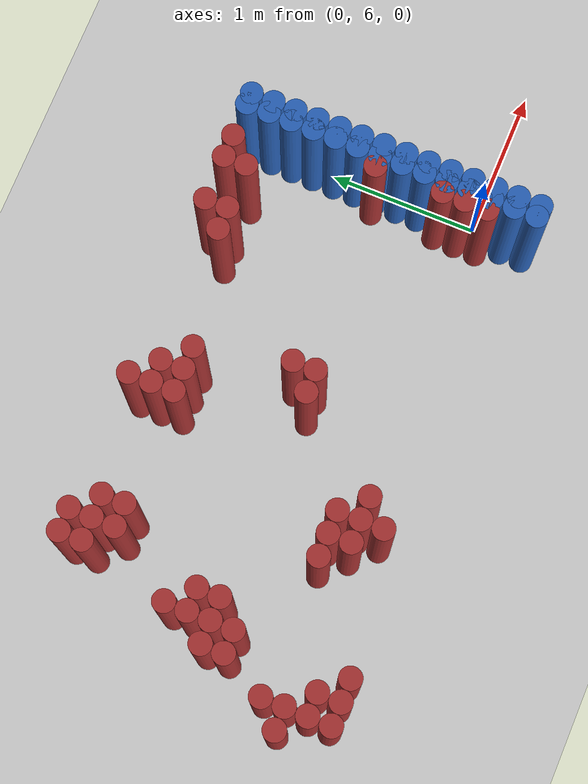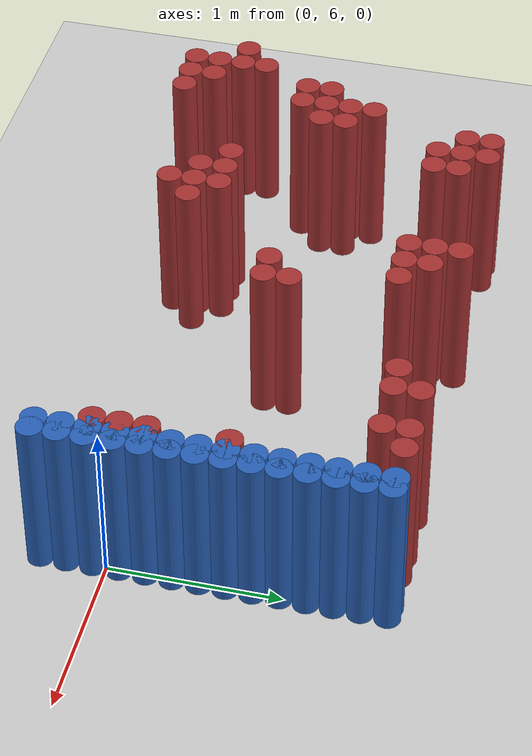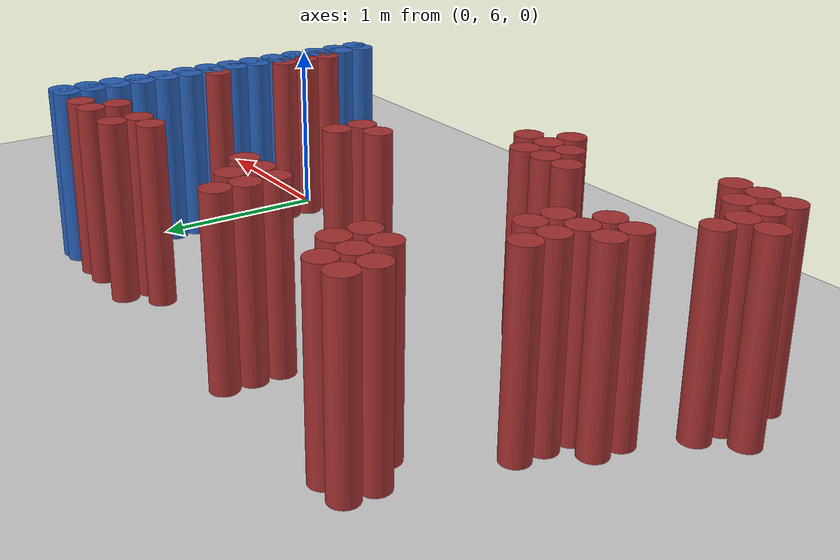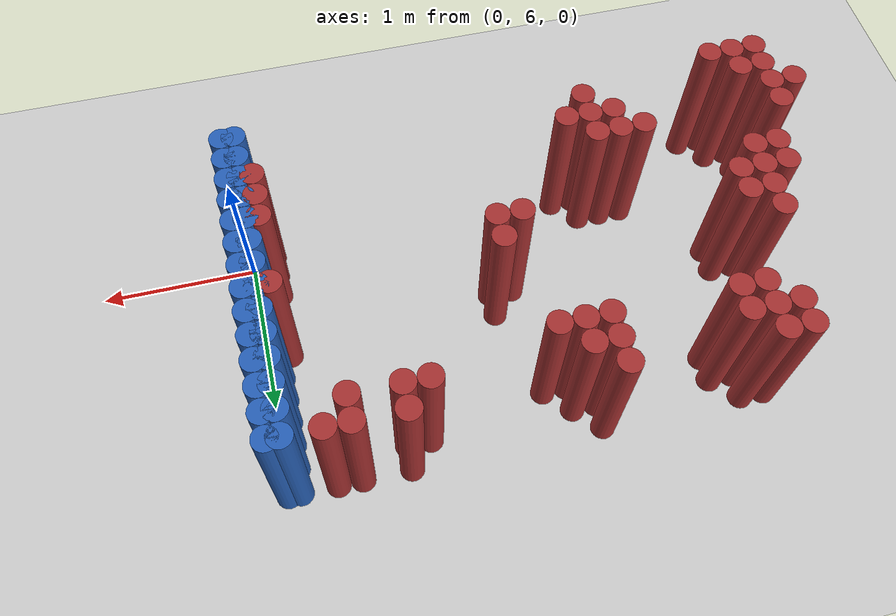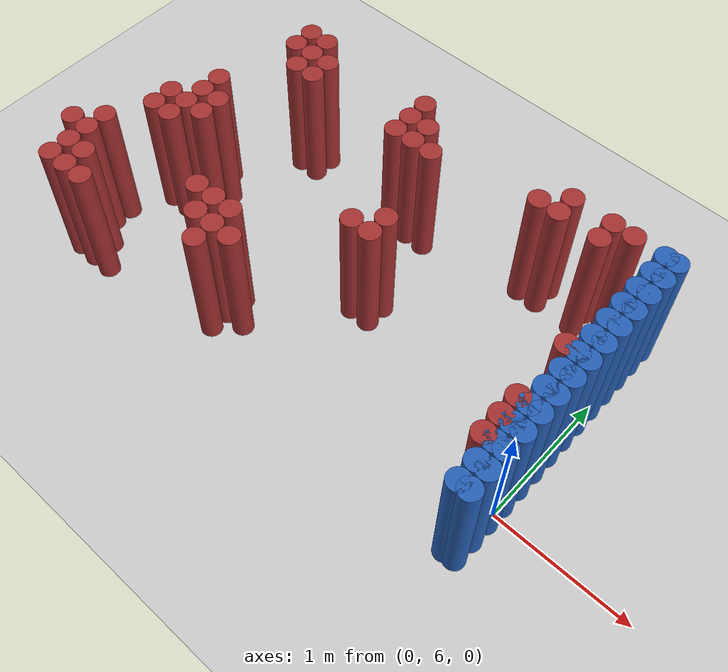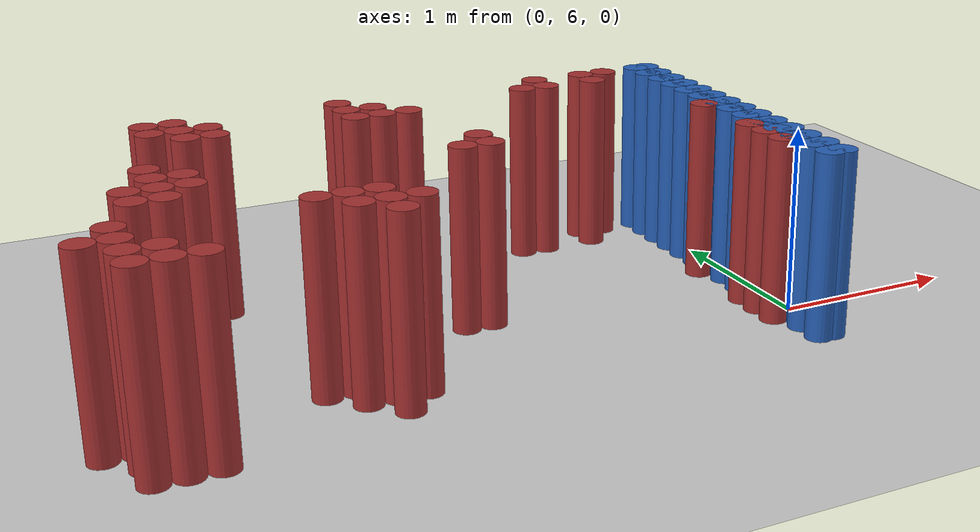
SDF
<sdf version="1.6">
 <world name="barn_world">
  <model name="ground_plane">
   <static>1</static>
   <link name="link">
    <collision name="collision">
     <geometry><plane><normal>0 0 1</normal><size>100 100</size></plane></geometry>
    </collision>
    <visual name="visual">
     <geometry><plane><normal>0 0 1</normal><size>100 100</size></plane></geometry>
     <material>
      <script><uri>file://media/materials/scripts/gazebo.material</uri><name>Gazebo/Grey</name></script>
     </material>
    </visual>
   </link>
  </model>
  <model name="unit_cylinder_186">
   <static>1</static>
   <pose>-3.6000 5.9250 0.5 0 0 0</pose>
   <link name="link">
    <collision name="collision">
     <geometry><cylinder><radius>0.075</radius><length>1</length></cylinder></geometry>
    </collision>
    <visual name="visual">
     <geometry><cylinder><radius>0.075</radius><length>1</length></cylinder></geometry>
     <material><ambient>0.648 0.192 0.192 1</ambient><diffuse>0.648 0.192 0.192 1</diffuse></material>
    </visual>
   </link>
  </model>
  <model name="unit_cylinder_188">
   <static>1</static>
   <pose>-3.4500 5.6250 0.5 0 0 0</pose>
   <link name="link">
    <collision name="collision">
     <geometry><cylinder><radius>0.075</radius><length>1</length></cylinder></geometry>
    </collision>
    <visual name="visual">
     <geometry><cylinder><radius>0.075</radius><length>1</length></cylinder></geometry>
     <material><ambient>0.648 0.192 0.192 1</ambient><diffuse>0.648 0.192 0.192 1</diffuse></material>
    </visual>
   </link>
  </model>
  <model name="unit_cylinder_189">
   <static>1</static>
   <pose>-3.4500 5.7750 0.5 0 0 0</pose>
   <link name="link">
    <collision name="collision">
     <geometry><cylinder><radius>0.075</radius><length>1</length></cylinder></geometry>
    </collision>
    <visual name="visual">
     <geometry><cylinder><radius>0.075</radius><length>1</length></cylinder></geometry>
     <material><ambient>0.648 0.192 0.192 1</ambient><diffuse>0.648 0.192 0.192 1</diffuse></material>
    </visual>
   </link>
  </model>
  <model name="unit_cylinder_190">
   <static>1</static>
   <pose>-3.4500 5.9250 0.5 0 0 0</pose>
   <link name="link">
    <collision name="collision">
     <geometry><cylinder><radius>0.075</radius><length>1</length></cylinder></geometry>
    </collision>
    <visual name="visual">
     <geometry><cylinder><radius>0.075</radius><length>1</length></cylinder></geometry>
     <material><ambient>0.648 0.192 0.192 1</ambient><diffuse>0.648 0.192 0.192 1</diffuse></material>
    </visual>
   </link>
  </model>
  <model name="unit_cylinder_191">
   <static>1</static>
   <pose>-3.4500 6.0750 0.5 0 0 0</pose>
   <link name="link">
    <collision name="collision">
     <geometry><cylinder><radius>0.075</radius><length>1</length></cylinder></geometry>
    </collision>
    <visual name="visual">
     <geometry><cylinder><radius>0.075</radius><length>1</length></cylinder></geometry>
     <material><ambient>0.648 0.192 0.192 1</ambient><diffuse>0.648 0.192 0.192 1</diffuse></material>
    </visual>
   </link>
  </model>
  <model name="unit_cylinder_195">
   <static>1</static>
   <pose>-3.3000 5.6250 0.5 0 0 0</pose>
   <link name="link">
    <collision name="collision">
     <geometry><cylinder><radius>0.075</radius><length>1</length></cylinder></geometry>
    </collision>
    <visual name="visual">
     <geometry><cylinder><radius>0.075</radius><length>1</length></cylinder></geometry>
     <material><ambient>0.648 0.192 0.192 1</ambient><diffuse>0.648 0.192 0.192 1</diffuse></material>
    </visual>
   </link>
  </model>
  <model name="unit_cylinder_196">
   <static>1</static>
   <pose>-3.3000 5.7750 0.5 0 0 0</pose>
   <link name="link">
    <collision name="collision">
     <geometry><cylinder><radius>0.075</radius><length>1</length></cylinder></geometry>
    </collision>
    <visual name="visual">
     <geometry><cylinder><radius>0.075</radius><length>1</length></cylinder></geometry>
     <material><ambient>0.648 0.192 0.192 1</ambient><diffuse>0.648 0.192 0.192 1</diffuse></material>
    </visual>
   </link>
  </model>
  <model name="unit_cylinder_197">
   <static>1</static>
   <pose>-3.3000 6.3750 0.5 0 0 0</pose>
   <link name="link">
    <collision name="collision">
     <geometry><cylinder><radius>0.075</radius><length>1</length></cylinder></geometry>
    </collision>
    <visual name="visual">
     <geometry><cylinder><radius>0.075</radius><length>1</length></cylinder></geometry>
     <material><ambient>0.648 0.192 0.192 1</ambient><diffuse>0.648 0.192 0.192 1</diffuse></material>
    </visual>
   </link>
  </model>
  <model name="unit_cylinder_198">
   <static>1</static>
   <pose>-3.3000 6.5250 0.5 0 0 0</pose>
   <link name="link">
    <collision name="collision">
     <geometry><cylinder><radius>0.075</radius><length>1</length></cylinder></geometry>
    </collision>
    <visual name="visual">
     <geometry><cylinder><radius>0.075</radius><length>1</length></cylinder></geometry>
     <material><ambient>0.648 0.192 0.192 1</ambient><diffuse>0.648 0.192 0.192 1</diffuse></material>
    </visual>
   </link>
  </model>
  <model name="unit_cylinder_200">
   <static>1</static>
   <pose>-3.1500 5.6250 0.5 0 0 0</pose>
   <link name="link">
    <collision name="collision">
     <geometry><cylinder><radius>0.075</radius><length>1</length></cylinder></geometry>
    </collision>
    <visual name="visual">
     <geometry><cylinder><radius>0.075</radius><length>1</length></cylinder></geometry>
     <material><ambient>0.648 0.192 0.192 1</ambient><diffuse>0.648 0.192 0.192 1</diffuse></material>
    </visual>
   </link>
  </model>
  <model name="unit_cylinder_201">
   <static>1</static>
   <pose>-3.1500 6.3750 0.5 0 0 0</pose>
   <link name="link">
    <collision name="collision">
     <geometry><cylinder><radius>0.075</radius><length>1</length></cylinder></geometry>
    </collision>
    <visual name="visual">
     <geometry><cylinder><radius>0.075</radius><length>1</length></cylinder></geometry>
     <material><ambient>0.648 0.192 0.192 1</ambient><diffuse>0.648 0.192 0.192 1</diffuse></material>
    </visual>
   </link>
  </model>
  <model name="unit_cylinder_202">
   <static>1</static>
   <pose>-3.1500 6.5250 0.5 0 0 0</pose>
   <link name="link">
    <collision name="collision">
     <geometry><cylinder><radius>0.075</radius><length>1</length></cylinder></geometry>
    </collision>
    <visual name="visual">
     <geometry><cylinder><radius>0.075</radius><length>1</length></cylinder></geometry>
     <material><ambient>0.648 0.192 0.192 1</ambient><diffuse>0.648 0.192 0.192 1</diffuse></material>
    </visual>
   </link>
  </model>
  <model name="unit_cylinder_203">
   <static>1</static>
   <pose>-3.1500 6.6750 0.5 0 0 0</pose>
   <link name="link">
    <collision name="collision">
     <geometry><cylinder><radius>0.075</radius><length>1</length></cylinder></geometry>
    </collision>
    <visual name="visual">
     <geometry><cylinder><radius>0.075</radius><length>1</length></cylinder></geometry>
     <material><ambient>0.648 0.192 0.192 1</ambient><diffuse>0.648 0.192 0.192 1</diffuse></material>
    </visual>
   </link>
  </model>
  <model name="unit_cylinder_204">
   <static>1</static>
   <pose>-3.1500 6.8250 0.5 0 0 0</pose>
   <link name="link">
    <collision name="collision">
     <geometry><cylinder><radius>0.075</radius><length>1</length></cylinder></geometry>
    </collision>
    <visual name="visual">
     <geometry><cylinder><radius>0.075</radius><length>1</length></cylinder></geometry>
     <material><ambient>0.648 0.192 0.192 1</ambient><diffuse>0.648 0.192 0.192 1</diffuse></material>
    </visual>
   </link>
  </model>
  <model name="unit_cylinder_205">
   <static>1</static>
   <pose>-3.0000 6.5250 0.5 0 0 0</pose>
   <link name="link">
    <collision name="collision">
     <geometry><cylinder><radius>0.075</radius><length>1</length></cylinder></geometry>
    </collision>
    <visual name="visual">
     <geometry><cylinder><radius>0.075</radius><length>1</length></cylinder></geometry>
     <material><ambient>0.648 0.192 0.192 1</ambient><diffuse>0.648 0.192 0.192 1</diffuse></material>
    </visual>
   </link>
  </model>
  <model name="unit_cylinder_206">
   <static>1</static>
   <pose>-3.0000 6.6750 0.5 0 0 0</pose>
   <link name="link">
    <collision name="collision">
     <geometry><cylinder><radius>0.075</radius><length>1</length></cylinder></geometry>
    </collision>
    <visual name="visual">
     <geometry><cylinder><radius>0.075</radius><length>1</length></cylinder></geometry>
     <material><ambient>0.648 0.192 0.192 1</ambient><diffuse>0.648 0.192 0.192 1</diffuse></material>
    </visual>
   </link>
  </model>
  <model name="unit_cylinder_207">
   <static>1</static>
   <pose>-3.0000 7.4250 0.5 0 0 0</pose>
   <link name="link">
    <collision name="collision">
     <geometry><cylinder><radius>0.075</radius><length>1</length></cylinder></geometry>
    </collision>
    <visual name="visual">
     <geometry><cylinder><radius>0.075</radius><length>1</length></cylinder></geometry>
     <material><ambient>0.648 0.192 0.192 1</ambient><diffuse>0.648 0.192 0.192 1</diffuse></material>
    </visual>
   </link>
  </model>
  <model name="unit_cylinder_208">
   <static>1</static>
   <pose>-3.0000 7.5750 0.5 0 0 0</pose>
   <link name="link">
    <collision name="collision">
     <geometry><cylinder><radius>0.075</radius><length>1</length></cylinder></geometry>
    </collision>
    <visual name="visual">
     <geometry><cylinder><radius>0.075</radius><length>1</length></cylinder></geometry>
     <material><ambient>0.648 0.192 0.192 1</ambient><diffuse>0.648 0.192 0.192 1</diffuse></material>
    </visual>
   </link>
  </model>
  <model name="unit_cylinder_209">
   <static>1</static>
   <pose>-2.8500 7.2750 0.5 0 0 0</pose>
   <link name="link">
    <collision name="collision">
     <geometry><cylinder><radius>0.075</radius><length>1</length></cylinder></geometry>
    </collision>
    <visual name="visual">
     <geometry><cylinder><radius>0.075</radius><length>1</length></cylinder></geometry>
     <material><ambient>0.648 0.192 0.192 1</ambient><diffuse>0.648 0.192 0.192 1</diffuse></material>
    </visual>
   </link>
  </model>
  <model name="unit_cylinder_210">
   <static>1</static>
   <pose>-2.8500 7.4250 0.5 0 0 0</pose>
   <link name="link">
    <collision name="collision">
     <geometry><cylinder><radius>0.075</radius><length>1</length></cylinder></geometry>
    </collision>
    <visual name="visual">
     <geometry><cylinder><radius>0.075</radius><length>1</length></cylinder></geometry>
     <material><ambient>0.648 0.192 0.192 1</ambient><diffuse>0.648 0.192 0.192 1</diffuse></material>
    </visual>
   </link>
  </model>
  <model name="unit_cylinder_211">
   <static>1</static>
   <pose>-2.8500 7.5750 0.5 0 0 0</pose>
   <link name="link">
    <collision name="collision">
     <geometry><cylinder><radius>0.075</radius><length>1</length></cylinder></geometry>
    </collision>
    <visual name="visual">
     <geometry><cylinder><radius>0.075</radius><length>1</length></cylinder></geometry>
     <material><ambient>0.648 0.192 0.192 1</ambient><diffuse>0.648 0.192 0.192 1</diffuse></material>
    </visual>
   </link>
  </model>
  <model name="unit_cylinder_212">
   <static>1</static>
   <pose>-2.7000 7.2750 0.5 0 0 0</pose>
   <link name="link">
    <collision name="collision">
     <geometry><cylinder><radius>0.075</radius><length>1</length></cylinder></geometry>
    </collision>
    <visual name="visual">
     <geometry><cylinder><radius>0.075</radius><length>1</length></cylinder></geometry>
     <material><ambient>0.648 0.192 0.192 1</ambient><diffuse>0.648 0.192 0.192 1</diffuse></material>
    </visual>
   </link>
  </model>
  <model name="unit_cylinder_213">
   <static>1</static>
   <pose>-2.7000 7.4250 0.5 0 0 0</pose>
   <link name="link">
    <collision name="collision">
     <geometry><cylinder><radius>0.075</radius><length>1</length></cylinder></geometry>
    </collision>
    <visual name="visual">
     <geometry><cylinder><radius>0.075</radius><length>1</length></cylinder></geometry>
     <material><ambient>0.648 0.192 0.192 1</ambient><diffuse>0.648 0.192 0.192 1</diffuse></material>
    </visual>
   </link>
  </model>
  <model name="unit_cylinder_215">
   <static>1</static>
   <pose>-2.5500 6.0750 0.5 0 0 0</pose>
   <link name="link">
    <collision name="collision">
     <geometry><cylinder><radius>0.075</radius><length>1</length></cylinder></geometry>
    </collision>
    <visual name="visual">
     <geometry><cylinder><radius>0.075</radius><length>1</length></cylinder></geometry>
     <material><ambient>0.648 0.192 0.192 1</ambient><diffuse>0.648 0.192 0.192 1</diffuse></material>
    </visual>
   </link>
  </model>
  <model name="unit_cylinder_219">
   <static>1</static>
   <pose>-2.4000 5.9250 0.5 0 0 0</pose>
   <link name="link">
    <collision name="collision">
     <geometry><cylinder><radius>0.075</radius><length>1</length></cylinder></geometry>
    </collision>
    <visual name="visual">
     <geometry><cylinder><radius>0.075</radius><length>1</length></cylinder></geometry>
     <material><ambient>0.648 0.192 0.192 1</ambient><diffuse>0.648 0.192 0.192 1</diffuse></material>
    </visual>
   </link>
  </model>
  <model name="unit_cylinder_220">
   <static>1</static>
   <pose>-2.4000 6.0750 0.5 0 0 0</pose>
   <link name="link">
    <collision name="collision">
     <geometry><cylinder><radius>0.075</radius><length>1</length></cylinder></geometry>
    </collision>
    <visual name="visual">
     <geometry><cylinder><radius>0.075</radius><length>1</length></cylinder></geometry>
     <material><ambient>0.648 0.192 0.192 1</ambient><diffuse>0.648 0.192 0.192 1</diffuse></material>
    </visual>
   </link>
  </model>
  <model name="unit_cylinder_222">
   <static>1</static>
   <pose>-2.2500 5.7750 0.5 0 0 0</pose>
   <link name="link">
    <collision name="collision">
     <geometry><cylinder><radius>0.075</radius><length>1</length></cylinder></geometry>
    </collision>
    <visual name="visual">
     <geometry><cylinder><radius>0.075</radius><length>1</length></cylinder></geometry>
     <material><ambient>0.648 0.192 0.192 1</ambient><diffuse>0.648 0.192 0.192 1</diffuse></material>
    </visual>
   </link>
  </model>
  <model name="unit_cylinder_223">
   <static>1</static>
   <pose>-2.2500 5.9250 0.5 0 0 0</pose>
   <link name="link">
    <collision name="collision">
     <geometry><cylinder><radius>0.075</radius><length>1</length></cylinder></geometry>
    </collision>
    <visual name="visual">
     <geometry><cylinder><radius>0.075</radius><length>1</length></cylinder></geometry>
     <material><ambient>0.648 0.192 0.192 1</ambient><diffuse>0.648 0.192 0.192 1</diffuse></material>
    </visual>
   </link>
  </model>
  <model name="unit_cylinder_224">
   <static>1</static>
   <pose>-2.2500 6.0750 0.5 0 0 0</pose>
   <link name="link">
    <collision name="collision">
     <geometry><cylinder><radius>0.075</radius><length>1</length></cylinder></geometry>
    </collision>
    <visual name="visual">
     <geometry><cylinder><radius>0.075</radius><length>1</length></cylinder></geometry>
     <material><ambient>0.648 0.192 0.192 1</ambient><diffuse>0.648 0.192 0.192 1</diffuse></material>
    </visual>
   </link>
  </model>
  <model name="unit_cylinder_225">
   <static>1</static>
   <pose>-2.1000 5.9250 0.5 0 0 0</pose>
   <link name="link">
    <collision name="collision">
     <geometry><cylinder><radius>0.075</radius><length>1</length></cylinder></geometry>
    </collision>
    <visual name="visual">
     <geometry><cylinder><radius>0.075</radius><length>1</length></cylinder></geometry>
     <material><ambient>0.648 0.192 0.192 1</ambient><diffuse>0.648 0.192 0.192 1</diffuse></material>
    </visual>
   </link>
  </model>
  <model name="unit_cylinder_226">
   <static>1</static>
   <pose>-1.9500 7.2750 0.5 0 0 0</pose>
   <link name="link">
    <collision name="collision">
     <geometry><cylinder><radius>0.075</radius><length>1</length></cylinder></geometry>
    </collision>
    <visual name="visual">
     <geometry><cylinder><radius>0.075</radius><length>1</length></cylinder></geometry>
     <material><ambient>0.648 0.192 0.192 1</ambient><diffuse>0.648 0.192 0.192 1</diffuse></material>
    </visual>
   </link>
  </model>
  <model name="unit_cylinder_227">
   <static>1</static>
   <pose>-1.9500 7.4250 0.5 0 0 0</pose>
   <link name="link">
    <collision name="collision">
     <geometry><cylinder><radius>0.075</radius><length>1</length></cylinder></geometry>
    </collision>
    <visual name="visual">
     <geometry><cylinder><radius>0.075</radius><length>1</length></cylinder></geometry>
     <material><ambient>0.648 0.192 0.192 1</ambient><diffuse>0.648 0.192 0.192 1</diffuse></material>
    </visual>
   </link>
  </model>
  <model name="unit_cylinder_228">
   <static>1</static>
   <pose>-1.9500 7.5750 0.5 0 0 0</pose>
   <link name="link">
    <collision name="collision">
     <geometry><cylinder><radius>0.075</radius><length>1</length></cylinder></geometry>
    </collision>
    <visual name="visual">
     <geometry><cylinder><radius>0.075</radius><length>1</length></cylinder></geometry>
     <material><ambient>0.648 0.192 0.192 1</ambient><diffuse>0.648 0.192 0.192 1</diffuse></material>
    </visual>
   </link>
  </model>
  <model name="unit_cylinder_232">
   <static>1</static>
   <pose>-1.8000 7.2750 0.5 0 0 0</pose>
   <link name="link">
    <collision name="collision">
     <geometry><cylinder><radius>0.075</radius><length>1</length></cylinder></geometry>
    </collision>
    <visual name="visual">
     <geometry><cylinder><radius>0.075</radius><length>1</length></cylinder></geometry>
     <material><ambient>0.648 0.192 0.192 1</ambient><diffuse>0.648 0.192 0.192 1</diffuse></material>
    </visual>
   </link>
  </model>
  <model name="unit_cylinder_233">
   <static>1</static>
   <pose>-1.8000 7.4250 0.5 0 0 0</pose>
   <link name="link">
    <collision name="collision">
     <geometry><cylinder><radius>0.075</radius><length>1</length></cylinder></geometry>
    </collision>
    <visual name="visual">
     <geometry><cylinder><radius>0.075</radius><length>1</length></cylinder></geometry>
     <material><ambient>0.648 0.192 0.192 1</ambient><diffuse>0.648 0.192 0.192 1</diffuse></material>
    </visual>
   </link>
  </model>
  <model name="unit_cylinder_236">
   <static>1</static>
   <pose>-1.6500 6.5250 0.5 0 0 0</pose>
   <link name="link">
    <collision name="collision">
     <geometry><cylinder><radius>0.075</radius><length>1</length></cylinder></geometry>
    </collision>
    <visual name="visual">
     <geometry><cylinder><radius>0.075</radius><length>1</length></cylinder></geometry>
     <material><ambient>0.648 0.192 0.192 1</ambient><diffuse>0.648 0.192 0.192 1</diffuse></material>
    </visual>
   </link>
  </model>
  <model name="unit_cylinder_237">
   <static>1</static>
   <pose>-1.6500 7.2750 0.5 0 0 0</pose>
   <link name="link">
    <collision name="collision">
     <geometry><cylinder><radius>0.075</radius><length>1</length></cylinder></geometry>
    </collision>
    <visual name="visual">
     <geometry><cylinder><radius>0.075</radius><length>1</length></cylinder></geometry>
     <material><ambient>0.648 0.192 0.192 1</ambient><diffuse>0.648 0.192 0.192 1</diffuse></material>
    </visual>
   </link>
  </model>
  <model name="unit_cylinder_240">
   <static>1</static>
   <pose>-1.5000 6.5250 0.5 0 0 0</pose>
   <link name="link">
    <collision name="collision">
     <geometry><cylinder><radius>0.075</radius><length>1</length></cylinder></geometry>
    </collision>
    <visual name="visual">
     <geometry><cylinder><radius>0.075</radius><length>1</length></cylinder></geometry>
     <material><ambient>0.648 0.192 0.192 1</ambient><diffuse>0.648 0.192 0.192 1</diffuse></material>
    </visual>
   </link>
  </model>
  <model name="unit_cylinder_241">
   <static>1</static>
   <pose>-1.5000 6.6750 0.5 0 0 0</pose>
   <link name="link">
    <collision name="collision">
     <geometry><cylinder><radius>0.075</radius><length>1</length></cylinder></geometry>
    </collision>
    <visual name="visual">
     <geometry><cylinder><radius>0.075</radius><length>1</length></cylinder></geometry>
     <material><ambient>0.648 0.192 0.192 1</ambient><diffuse>0.648 0.192 0.192 1</diffuse></material>
    </visual>
   </link>
  </model>
  <model name="unit_cylinder_249">
   <static>1</static>
   <pose>-0.9000 7.4250 0.5 0 0 0</pose>
   <link name="link">
    <collision name="collision">
     <geometry><cylinder><radius>0.075</radius><length>1</length></cylinder></geometry>
    </collision>
    <visual name="visual">
     <geometry><cylinder><radius>0.075</radius><length>1</length></cylinder></geometry>
     <material><ambient>0.648 0.192 0.192 1</ambient><diffuse>0.648 0.192 0.192 1</diffuse></material>
    </visual>
   </link>
  </model>
  <model name="unit_cylinder_250">
   <static>1</static>
   <pose>-0.7500 7.4250 0.5 0 0 0</pose>
   <link name="link">
    <collision name="collision">
     <geometry><cylinder><radius>0.075</radius><length>1</length></cylinder></geometry>
    </collision>
    <visual name="visual">
     <geometry><cylinder><radius>0.075</radius><length>1</length></cylinder></geometry>
     <material><ambient>0.648 0.192 0.192 1</ambient><diffuse>0.648 0.192 0.192 1</diffuse></material>
    </visual>
   </link>
  </model>
  <model name="unit_cylinder_251">
   <static>1</static>
   <pose>-0.7500 7.5750 0.5 0 0 0</pose>
   <link name="link">
    <collision name="collision">
     <geometry><cylinder><radius>0.075</radius><length>1</length></cylinder></geometry>
    </collision>
    <visual name="visual">
     <geometry><cylinder><radius>0.075</radius><length>1</length></cylinder></geometry>
     <material><ambient>0.648 0.192 0.192 1</ambient><diffuse>0.648 0.192 0.192 1</diffuse></material>
    </visual>
   </link>
  </model>
  <model name="unit_cylinder_252">
   <static>1</static>
   <pose>-0.4500 7.4250 0.5 0 0 0</pose>
   <link name="link">
    <collision name="collision">
     <geometry><cylinder><radius>0.075</radius><length>1</length></cylinder></geometry>
    </collision>
    <visual name="visual">
     <geometry><cylinder><radius>0.075</radius><length>1</length></cylinder></geometry>
     <material><ambient>0.648 0.192 0.192 1</ambient><diffuse>0.648 0.192 0.192 1</diffuse></material>
    </visual>
   </link>
  </model>
  <model name="unit_cylinder_253">
   <static>1</static>
   <pose>-0.4500 7.5750 0.5 0 0 0</pose>
   <link name="link">
    <collision name="collision">
     <geometry><cylinder><radius>0.075</radius><length>1</length></cylinder></geometry>
    </collision>
    <visual name="visual">
     <geometry><cylinder><radius>0.075</radius><length>1</length></cylinder></geometry>
     <material><ambient>0.648 0.192 0.192 1</ambient><diffuse>0.648 0.192 0.192 1</diffuse></material>
    </visual>
   </link>
  </model>
  <model name="unit_cylinder_256">
   <static>1</static>
   <pose>-0.3000 7.5750 0.5 0 0 0</pose>
   <link name="link">
    <collision name="collision">
     <geometry><cylinder><radius>0.075</radius><length>1</length></cylinder></geometry>
    </collision>
    <visual name="visual">
     <geometry><cylinder><radius>0.075</radius><length>1</length></cylinder></geometry>
     <material><ambient>0.648 0.192 0.192 1</ambient><diffuse>0.648 0.192 0.192 1</diffuse></material>
    </visual>
   </link>
  </model>
  <model name="unit_cylinder_260">
   <static>1</static>
   <pose>-0.1500 5.9250 0.5 0 0 0</pose>
   <link name="link">
    <collision name="collision">
     <geometry><cylinder><radius>0.075</radius><length>1</length></cylinder></geometry>
    </collision>
    <visual name="visual">
     <geometry><cylinder><radius>0.075</radius><length>1</length></cylinder></geometry>
     <material><ambient>0.648 0.192 0.192 1</ambient><diffuse>0.648 0.192 0.192 1</diffuse></material>
    </visual>
   </link>
  </model>
  <model name="unit_cylinder_261">
   <static>1</static>
   <pose>-0.1500 6.0750 0.5 0 0 0</pose>
   <link name="link">
    <collision name="collision">
     <geometry><cylinder><radius>0.075</radius><length>1</length></cylinder></geometry>
    </collision>
    <visual name="visual">
     <geometry><cylinder><radius>0.075</radius><length>1</length></cylinder></geometry>
     <material><ambient>0.648 0.192 0.192 1</ambient><diffuse>0.648 0.192 0.192 1</diffuse></material>
    </visual>
   </link>
  </model>
  <model name="unit_cylinder_262">
   <static>1</static>
   <pose>-0.1500 6.2250 0.5 0 0 0</pose>
   <link name="link">
    <collision name="collision">
     <geometry><cylinder><radius>0.075</radius><length>1</length></cylinder></geometry>
    </collision>
    <visual name="visual">
     <geometry><cylinder><radius>0.075</radius><length>1</length></cylinder></geometry>
     <material><ambient>0.648 0.192 0.192 1</ambient><diffuse>0.648 0.192 0.192 1</diffuse></material>
    </visual>
   </link>
  </model>
  <model name="unit_cylinder_263">
   <static>1</static>
   <pose>-0.1500 6.6750 0.5 0 0 0</pose>
   <link name="link">
    <collision name="collision">
     <geometry><cylinder><radius>0.075</radius><length>1</length></cylinder></geometry>
    </collision>
    <visual name="visual">
     <geometry><cylinder><radius>0.075</radius><length>1</length></cylinder></geometry>
     <material><ambient>0.648 0.192 0.192 1</ambient><diffuse>0.648 0.192 0.192 1</diffuse></material>
    </visual>
   </link>
  </model>
  <model name="unit_cylinder_271">
   <static>1</static>
   <pose>0.0000 5.6250 0.5 0 0 0</pose>
   <link name="link">
    <collision name="collision">
     <geometry><cylinder><radius>0.075</radius><length>1</length></cylinder></geometry>
    </collision>
    <visual name="visual">
     <geometry><cylinder><radius>0.075</radius><length>1</length></cylinder></geometry>
     <material><ambient>0.152 0.379 0.72 1</ambient><diffuse>0.152 0.379 0.72 1</diffuse></material>
    </visual>
   </link>
  </model>
  <model name="unit_cylinder_272">
   <static>1</static>
   <pose>0.0000 5.7750 0.5 0 0 0</pose>
   <link name="link">
    <collision name="collision">
     <geometry><cylinder><radius>0.075</radius><length>1</length></cylinder></geometry>
    </collision>
    <visual name="visual">
     <geometry><cylinder><radius>0.075</radius><length>1</length></cylinder></geometry>
     <material><ambient>0.152 0.379 0.72 1</ambient><diffuse>0.152 0.379 0.72 1</diffuse></material>
    </visual>
   </link>
  </model>
  <model name="unit_cylinder_273">
   <static>1</static>
   <pose>0.0000 5.9250 0.5 0 0 0</pose>
   <link name="link">
    <collision name="collision">
     <geometry><cylinder><radius>0.075</radius><length>1</length></cylinder></geometry>
    </collision>
    <visual name="visual">
     <geometry><cylinder><radius>0.075</radius><length>1</length></cylinder></geometry>
     <material><ambient>0.152 0.379 0.72 1</ambient><diffuse>0.152 0.379 0.72 1</diffuse></material>
    </visual>
   </link>
  </model>
  <model name="unit_cylinder_274">
   <static>1</static>
   <pose>0.0000 6.0750 0.5 0 0 0</pose>
   <link name="link">
    <collision name="collision">
     <geometry><cylinder><radius>0.075</radius><length>1</length></cylinder></geometry>
    </collision>
    <visual name="visual">
     <geometry><cylinder><radius>0.075</radius><length>1</length></cylinder></geometry>
     <material><ambient>0.152 0.379 0.72 1</ambient><diffuse>0.152 0.379 0.72 1</diffuse></material>
    </visual>
   </link>
  </model>
  <model name="unit_cylinder_275">
   <static>1</static>
   <pose>0.0000 6.2250 0.5 0 0 0</pose>
   <link name="link">
    <collision name="collision">
     <geometry><cylinder><radius>0.075</radius><length>1</length></cylinder></geometry>
    </collision>
    <visual name="visual">
     <geometry><cylinder><radius>0.075</radius><length>1</length></cylinder></geometry>
     <material><ambient>0.152 0.379 0.72 1</ambient><diffuse>0.152 0.379 0.72 1</diffuse></material>
    </visual>
   </link>
  </model>
  <model name="unit_cylinder_276">
   <static>1</static>
   <pose>0.0000 6.3750 0.5 0 0 0</pose>
   <link name="link">
    <collision name="collision">
     <geometry><cylinder><radius>0.075</radius><length>1</length></cylinder></geometry>
    </collision>
    <visual name="visual">
     <geometry><cylinder><radius>0.075</radius><length>1</length></cylinder></geometry>
     <material><ambient>0.152 0.379 0.72 1</ambient><diffuse>0.152 0.379 0.72 1</diffuse></material>
    </visual>
   </link>
  </model>
  <model name="unit_cylinder_277">
   <static>1</static>
   <pose>0.0000 6.5250 0.5 0 0 0</pose>
   <link name="link">
    <collision name="collision">
     <geometry><cylinder><radius>0.075</radius><length>1</length></cylinder></geometry>
    </collision>
    <visual name="visual">
     <geometry><cylinder><radius>0.075</radius><length>1</length></cylinder></geometry>
     <material><ambient>0.152 0.379 0.72 1</ambient><diffuse>0.152 0.379 0.72 1</diffuse></material>
    </visual>
   </link>
  </model>
  <model name="unit_cylinder_278">
   <static>1</static>
   <pose>0.0000 6.6750 0.5 0 0 0</pose>
   <link name="link">
    <collision name="collision">
     <geometry><cylinder><radius>0.075</radius><length>1</length></cylinder></geometry>
    </collision>
    <visual name="visual">
     <geometry><cylinder><radius>0.075</radius><length>1</length></cylinder></geometry>
     <material><ambient>0.152 0.379 0.72 1</ambient><diffuse>0.152 0.379 0.72 1</diffuse></material>
    </visual>
   </link>
  </model>
  <model name="unit_cylinder_279">
   <static>1</static>
   <pose>0.0000 6.8250 0.5 0 0 0</pose>
   <link name="link">
    <collision name="collision">
     <geometry><cylinder><radius>0.075</radius><length>1</length></cylinder></geometry>
    </collision>
    <visual name="visual">
     <geometry><cylinder><radius>0.075</radius><length>1</length></cylinder></geometry>
     <material><ambient>0.152 0.379 0.72 1</ambient><diffuse>0.152 0.379 0.72 1</diffuse></material>
    </visual>
   </link>
  </model>
  <model name="unit_cylinder_280">
   <static>1</static>
   <pose>0.0000 6.9750 0.5 0 0 0</pose>
   <link name="link">
    <collision name="collision">
     <geometry><cylinder><radius>0.075</radius><length>1</length></cylinder></geometry>
    </collision>
    <visual name="visual">
     <geometry><cylinder><radius>0.075</radius><length>1</length></cylinder></geometry>
     <material><ambient>0.152 0.379 0.72 1</ambient><diffuse>0.152 0.379 0.72 1</diffuse></material>
    </visual>
   </link>
  </model>
  <model name="unit_cylinder_281">
   <static>1</static>
   <pose>0.0000 7.1250 0.5 0 0 0</pose>
   <link name="link">
    <collision name="collision">
     <geometry><cylinder><radius>0.075</radius><length>1</length></cylinder></geometry>
    </collision>
    <visual name="visual">
     <geometry><cylinder><radius>0.075</radius><length>1</length></cylinder></geometry>
     <material><ambient>0.152 0.379 0.72 1</ambient><diffuse>0.152 0.379 0.72 1</diffuse></material>
    </visual>
   </link>
  </model>
  <model name="unit_cylinder_282">
   <static>1</static>
   <pose>0.0000 7.2750 0.5 0 0 0</pose>
   <link name="link">
    <collision name="collision">
     <geometry><cylinder><radius>0.075</radius><length>1</length></cylinder></geometry>
    </collision>
    <visual name="visual">
     <geometry><cylinder><radius>0.075</radius><length>1</length></cylinder></geometry>
     <material><ambient>0.152 0.379 0.72 1</ambient><diffuse>0.152 0.379 0.72 1</diffuse></material>
    </visual>
   </link>
  </model>
  <model name="unit_cylinder_283">
   <static>1</static>
   <pose>0.0000 7.4250 0.5 0 0 0</pose>
   <link name="link">
    <collision name="collision">
     <geometry><cylinder><radius>0.075</radius><length>1</length></cylinder></geometry>
    </collision>
    <visual name="visual">
     <geometry><cylinder><radius>0.075</radius><length>1</length></cylinder></geometry>
     <material><ambient>0.152 0.379 0.72 1</ambient><diffuse>0.152 0.379 0.72 1</diffuse></material>
    </visual>
   </link>
  </model>
  <model name="unit_cylinder_284">
   <static>1</static>
   <pose>0.0000 7.5750 0.5 0 0 0</pose>
   <link name="link">
    <collision name="collision">
     <geometry><cylinder><radius>0.075</radius><length>1</length></cylinder></geometry>
    </collision>
    <visual name="visual">
     <geometry><cylinder><radius>0.075</radius><length>1</length></cylinder></geometry>
     <material><ambient>0.152 0.379 0.72 1</ambient><diffuse>0.152 0.379 0.72 1</diffuse></material>
    </visual>
   </link>
  </model>
  <model name="unit_cylinder_334">
   <static>1</static>
   <pose>-0.0750 5.6250 0.5 0 0 0</pose>
   <link name="link">
    <collision name="collision">
     <geometry><cylinder><radius>0.075</radius><length>1</length></cylinder></geometry>
    </collision>
    <visual name="visual">
     <geometry><cylinder><radius>0.075</radius><length>1</length></cylinder></geometry>
     <material><ambient>0.152 0.379 0.72 1</ambient><diffuse>0.152 0.379 0.72 1</diffuse></material>
    </visual>
   </link>
  </model>
  <model name="unit_cylinder_336">
   <static>1</static>
   <pose>-0.0750 5.7750 0.5 0 0 0</pose>
   <link name="link">
    <collision name="collision">
     <geometry><cylinder><radius>0.075</radius><length>1</length></cylinder></geometry>
    </collision>
    <visual name="visual">
     <geometry><cylinder><radius>0.075</radius><length>1</length></cylinder></geometry>
     <material><ambient>0.152 0.379 0.72 1</ambient><diffuse>0.152 0.379 0.72 1</diffuse></material>
    </visual>
   </link>
  </model>
  <model name="unit_cylinder_338">
   <static>1</static>
   <pose>-0.0750 5.9250 0.5 0 0 0</pose>
   <link name="link">
    <collision name="collision">
     <geometry><cylinder><radius>0.075</radius><length>1</length></cylinder></geometry>
    </collision>
    <visual name="visual">
     <geometry><cylinder><radius>0.075</radius><length>1</length></cylinder></geometry>
     <material><ambient>0.152 0.379 0.72 1</ambient><diffuse>0.152 0.379 0.72 1</diffuse></material>
    </visual>
   </link>
  </model>
  <model name="unit_cylinder_340">
   <static>1</static>
   <pose>-0.0750 6.0750 0.5 0 0 0</pose>
   <link name="link">
    <collision name="collision">
     <geometry><cylinder><radius>0.075</radius><length>1</length></cylinder></geometry>
    </collision>
    <visual name="visual">
     <geometry><cylinder><radius>0.075</radius><length>1</length></cylinder></geometry>
     <material><ambient>0.152 0.379 0.72 1</ambient><diffuse>0.152 0.379 0.72 1</diffuse></material>
    </visual>
   </link>
  </model>
  <model name="unit_cylinder_342">
   <static>1</static>
   <pose>-0.0750 6.2250 0.5 0 0 0</pose>
   <link name="link">
    <collision name="collision">
     <geometry><cylinder><radius>0.075</radius><length>1</length></cylinder></geometry>
    </collision>
    <visual name="visual">
     <geometry><cylinder><radius>0.075</radius><length>1</length></cylinder></geometry>
     <material><ambient>0.152 0.379 0.72 1</ambient><diffuse>0.152 0.379 0.72 1</diffuse></material>
    </visual>
   </link>
  </model>
  <model name="unit_cylinder_344">
   <static>1</static>
   <pose>-0.0750 6.3750 0.5 0 0 0</pose>
   <link name="link">
    <collision name="collision">
     <geometry><cylinder><radius>0.075</radius><length>1</length></cylinder></geometry>
    </collision>
    <visual name="visual">
     <geometry><cylinder><radius>0.075</radius><length>1</length></cylinder></geometry>
     <material><ambient>0.152 0.379 0.72 1</ambient><diffuse>0.152 0.379 0.72 1</diffuse></material>
    </visual>
   </link>
  </model>
  <model name="unit_cylinder_346">
   <static>1</static>
   <pose>-0.0750 6.5250 0.5 0 0 0</pose>
   <link name="link">
    <collision name="collision">
     <geometry><cylinder><radius>0.075</radius><length>1</length></cylinder></geometry>
    </collision>
    <visual name="visual">
     <geometry><cylinder><radius>0.075</radius><length>1</length></cylinder></geometry>
     <material><ambient>0.152 0.379 0.72 1</ambient><diffuse>0.152 0.379 0.72 1</diffuse></material>
    </visual>
   </link>
  </model>
  <model name="unit_cylinder_348">
   <static>1</static>
   <pose>-0.0750 6.6750 0.5 0 0 0</pose>
   <link name="link">
    <collision name="collision">
     <geometry><cylinder><radius>0.075</radius><length>1</length></cylinder></geometry>
    </collision>
    <visual name="visual">
     <geometry><cylinder><radius>0.075</radius><length>1</length></cylinder></geometry>
     <material><ambient>0.152 0.379 0.72 1</ambient><diffuse>0.152 0.379 0.72 1</diffuse></material>
    </visual>
   </link>
  </model>
  <model name="unit_cylinder_350">
   <static>1</static>
   <pose>-0.0750 6.8250 0.5 0 0 0</pose>
   <link name="link">
    <collision name="collision">
     <geometry><cylinder><radius>0.075</radius><length>1</length></cylinder></geometry>
    </collision>
    <visual name="visual">
     <geometry><cylinder><radius>0.075</radius><length>1</length></cylinder></geometry>
     <material><ambient>0.152 0.379 0.72 1</ambient><diffuse>0.152 0.379 0.72 1</diffuse></material>
    </visual>
   </link>
  </model>
  <model name="unit_cylinder_352">
   <static>1</static>
   <pose>-0.0750 6.9750 0.5 0 0 0</pose>
   <link name="link">
    <collision name="collision">
     <geometry><cylinder><radius>0.075</radius><length>1</length></cylinder></geometry>
    </collision>
    <visual name="visual">
     <geometry><cylinder><radius>0.075</radius><length>1</length></cylinder></geometry>
     <material><ambient>0.152 0.379 0.72 1</ambient><diffuse>0.152 0.379 0.72 1</diffuse></material>
    </visual>
   </link>
  </model>
  <model name="unit_cylinder_354">
   <static>1</static>
   <pose>-0.0750 7.1250 0.5 0 0 0</pose>
   <link name="link">
    <collision name="collision">
     <geometry><cylinder><radius>0.075</radius><length>1</length></cylinder></geometry>
    </collision>
    <visual name="visual">
     <geometry><cylinder><radius>0.075</radius><length>1</length></cylinder></geometry>
     <material><ambient>0.152 0.379 0.72 1</ambient><diffuse>0.152 0.379 0.72 1</diffuse></material>
    </visual>
   </link>
  </model>
  <model name="unit_cylinder_356">
   <static>1</static>
   <pose>-0.0750 7.2750 0.5 0 0 0</pose>
   <link name="link">
    <collision name="collision">
     <geometry><cylinder><radius>0.075</radius><length>1</length></cylinder></geometry>
    </collision>
    <visual name="visual">
     <geometry><cylinder><radius>0.075</radius><length>1</length></cylinder></geometry>
     <material><ambient>0.152 0.379 0.72 1</ambient><diffuse>0.152 0.379 0.72 1</diffuse></material>
    </visual>
   </link>
  </model>
  <model name="unit_cylinder_358">
   <static>1</static>
   <pose>-0.0750 7.4250 0.5 0 0 0</pose>
   <link name="link">
    <collision name="collision">
     <geometry><cylinder><radius>0.075</radius><length>1</length></cylinder></geometry>
    </collision>
    <visual name="visual">
     <geometry><cylinder><radius>0.075</radius><length>1</length></cylinder></geometry>
     <material><ambient>0.152 0.379 0.72 1</ambient><diffuse>0.152 0.379 0.72 1</diffuse></material>
    </visual>
   </link>
  </model>
  <model name="unit_cylinder_360">
   <static>1</static>
   <pose>-0.0750 7.5750 0.5 0 0 0</pose>
   <link name="link">
    <collision name="collision">
     <geometry><cylinder><radius>0.075</radius><length>1</length></cylinder></geometry>
    </collision>
    <visual name="visual">
     <geometry><cylinder><radius>0.075</radius><length>1</length></cylinder></geometry>
     <material><ambient>0.152 0.379 0.72 1</ambient><diffuse>0.152 0.379 0.72 1</diffuse></material>
    </visual>
   </link>
  </model>
 </world>
</sdf>
